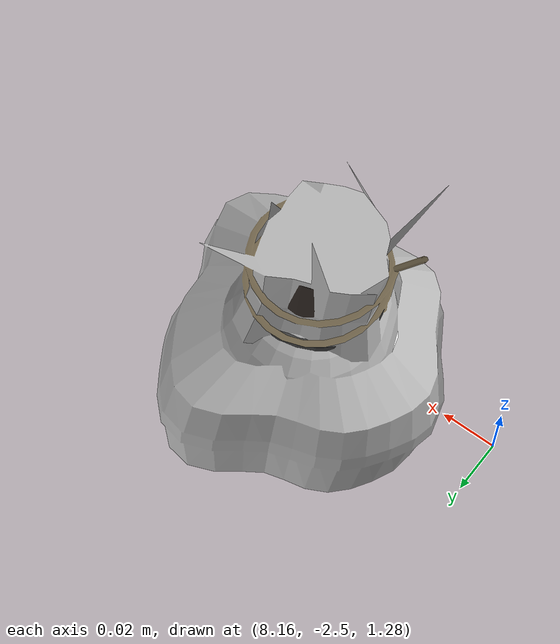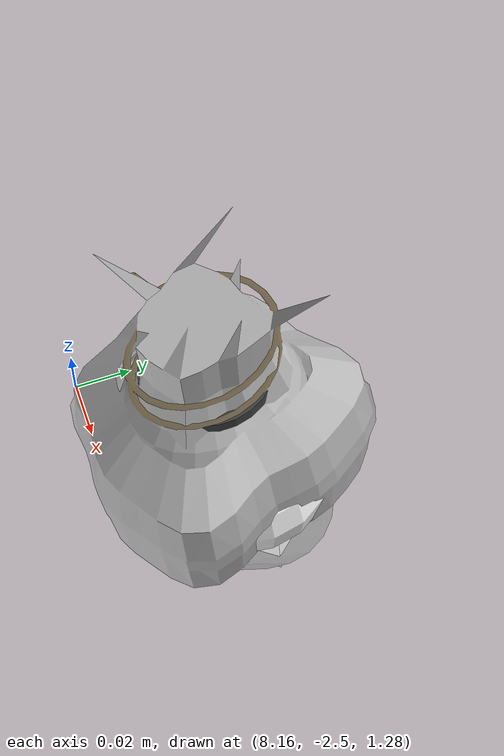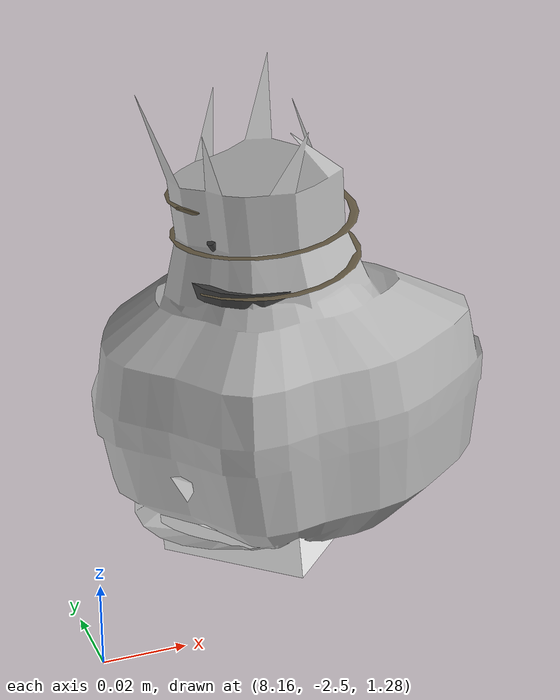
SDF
<sdf version="1.11">
 <world name="peach_orchard">
  <model name="ground">
   <static>true</static>
   <link name="link">
    <visual name="soil">
     <geometry><plane><normal>0 0 1</normal><size>32 22</size></plane></geometry>
     <material>
      <ambient>1 1 1 1</ambient>
      <diffuse>1 1 1 1</diffuse>
      <specular>0.1 0.1 0.1 1</specular>
      <pbr>
       <metal>
        <albedo_map>textures/soil_albedo.png</albedo_map>
        <normal_map type="tangent">textures/soil_normal.png</normal_map>
        <roughness>0.95</roughness>
        <metalness>0</metalness>
       </metal>
      </pbr>
     </material>
    </visual>
    <collision name="c_soil">
     <geometry><plane><normal>0 0 1</normal><size>32 22</size></plane></geometry>
    </collision>
   </link>
  </model>
  <model name="peach_tree_r4_t2_05">
   <pose>8.22 -2.46521 1.29406 0 0.117309 -2.75125</pose>
   <static>true</static>
   <link name="bag">
    <visual name="bag_mesh">
     <pose>0 0 0.0457835 0 0 -0</pose>
     <geometry>
      <mesh><uri>model://peach_sim/meshes/bagged_peach.glb</uri><scale>1.0894 1.27208 1.04053</scale></mesh>
     </geometry>
    </visual>
    <visual name="body">
     <pose>0 0 0.0277835 0 0 0</pose>
     <geometry><ellipsoid><radii>0.0408524 0.033074 0.0300062</radii></ellipsoid></geometry>
     <material>
      <ambient>1 1 1 1</ambient>
      <diffuse>1 1 1 1</diffuse>
      <specular>0.1 0.1 0.1 1</specular>
      <pbr>
       <metal>
        <albedo_map>textures/paper_bag_albedo.png</albedo_map>
        <normal_map type="tangent">textures/paper_bag_normal.png</normal_map>
        <roughness>0.72</roughness>
        <metalness>0</metalness>
       </metal>
      </pbr>
     </material>
    </visual>
    <visual name="bottom_fold">
     <pose>0 0 0.012 0 0 0.35</pose>
     <geometry><box><size>0.0633212 0.0380351 0.022</size></box></geometry>
     <material>
      <ambient>1 1 1 1</ambient>
      <diffuse>1 1 1 1</diffuse>
      <specular>0.1 0.1 0.1 1</specular>
      <pbr>
       <metal>
        <albedo_map>textures/paper_bag_albedo.png</albedo_map>
        <normal_map type="tangent">textures/paper_bag_normal.png</normal_map>
        <roughness>0.8</roughness>
        <metalness>0</metalness>
       </metal>
      </pbr>
     </material>
    </visual>
    <visual name="fruit">
     <pose>0 0 0.0176545 0 0 0</pose>
     <geometry><sphere><radius>0.0246006</radius></sphere></geometry>
     <material>
      <ambient>1 1 1 1</ambient>
      <diffuse>1 1 1 1</diffuse>
      <specular>0.1 0.1 0.1 1</specular>
      <pbr>
       <metal>
        <albedo_map>textures/fruit_skin_albedo.png</albedo_map>
        <normal_map type="tangent">textures/fruit_skin_normal.png</normal_map>
        <roughness>0.55</roughness>
        <metalness>0</metalness>
       </metal>
      </pbr>
     </material>
    </visual>
    <visual name="neck">
     <pose>0 0 0.0645671 0 0 0</pose>
     <geometry><cylinder><radius>0.013</radius><length>0.018</length></cylinder></geometry>
     <material>
      <ambient>1 1 1 1</ambient>
      <diffuse>1 1 1 1</diffuse>
      <specular>0.1 0.1 0.1 1</specular>
      <pbr>
       <metal>
        <albedo_map>textures/paper_bag_albedo.png</albedo_map>
        <normal_map type="tangent">textures/paper_bag_normal.png</normal_map>
        <roughness>0.75</roughness>
        <metalness>0</metalness>
       </metal>
      </pbr>
     </material>
    </visual>
    <visual name="gather">
     <pose>0 0 0.0455671 0 0 0</pose>
     <geometry><cylinder><radius>0.019</radius><length>0.02</length></cylinder></geometry>
     <material>
      <ambient>1 1 1 1</ambient>
      <diffuse>1 1 1 1</diffuse>
      <specular>0.1 0.1 0.1 1</specular>
      <pbr>
       <metal>
        <albedo_map>textures/paper_bag_albedo.png</albedo_map>
        <normal_map type="tangent">textures/paper_bag_normal.png</normal_map>
        <roughness>0.8</roughness>
        <metalness>0</metalness>
       </metal>
      </pbr>
     </material>
    </visual>
    <visual name="inner_paper">
     <pose>0 0 0.0695671 0 0 0</pose>
     <geometry><cylinder><radius>0.01</radius><length>0.008</length></cylinder></geometry>
     <material>
      <ambient>0.180392 0.14902 0.133333 1</ambient>
      <diffuse>0.180392 0.14902 0.133333 1</diffuse>
      <specular>0.1 0.1 0.1 1</specular>
     </material>
    </visual>
    <visual name="wire_0">
     <pose>0 0 0.0595671 0 0 0</pose>
     <geometry><cylinder><radius>0.0205</radius><length>0.0035</length></cylinder></geometry>
     <material>
      <ambient>0.25 0.25 0.25 1</ambient>
      <diffuse>0.25 0.25 0.25 1</diffuse>
      <specular>0.1 0.1 0.1 1</specular>
     </material>
    </visual>
    <visual name="wire_1">
     <pose>0 0 0.0665671 0 0 0</pose>
     <geometry><cylinder><radius>0.0205</radius><length>0.0035</length></cylinder></geometry>
     <material>
      <ambient>0.25 0.25 0.25 1</ambient>
      <diffuse>0.25 0.25 0.25 1</diffuse>
      <specular>0.1 0.1 0.1 1</specular>
     </material>
    </visual>
    <visual name="wire_tail">
     <pose>0.01 0 0.0675671 0 0.521618 0</pose>
     <geometry><cylinder><radius>0.0012</radius><length>0.026</length></cylinder></geometry>
     <material>
      <ambient>0.25 0.25 0.25 1</ambient>
      <diffuse>0.25 0.25 0.25 1</diffuse>
      <specular>0.1 0.1 0.1 1</specular>
     </material>
    </visual>
    <collision name="c_body">
     <pose>0 0 0.0277835 0 0 0</pose>
     <geometry><cylinder><radius>0.0408524</radius><length>0.0555671</length></cylinder></geometry>
    </collision>
   </link>
  </model>
 </world>
</sdf>
